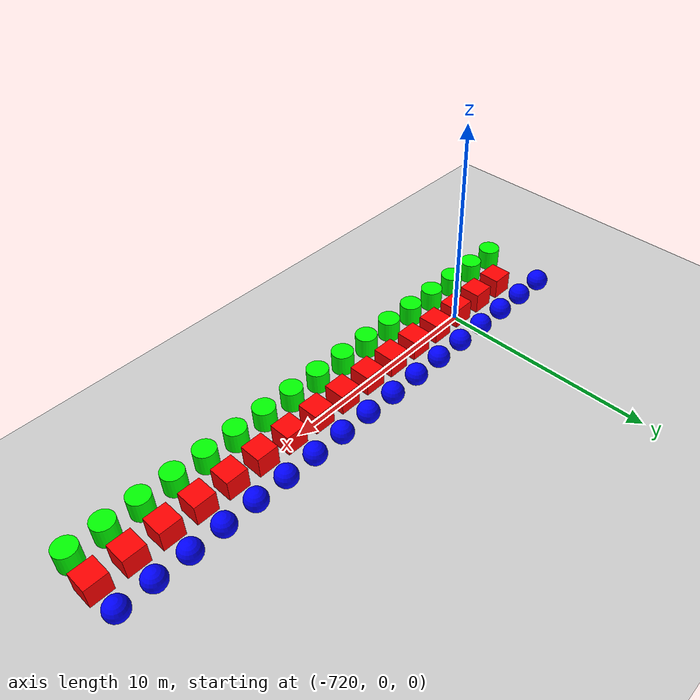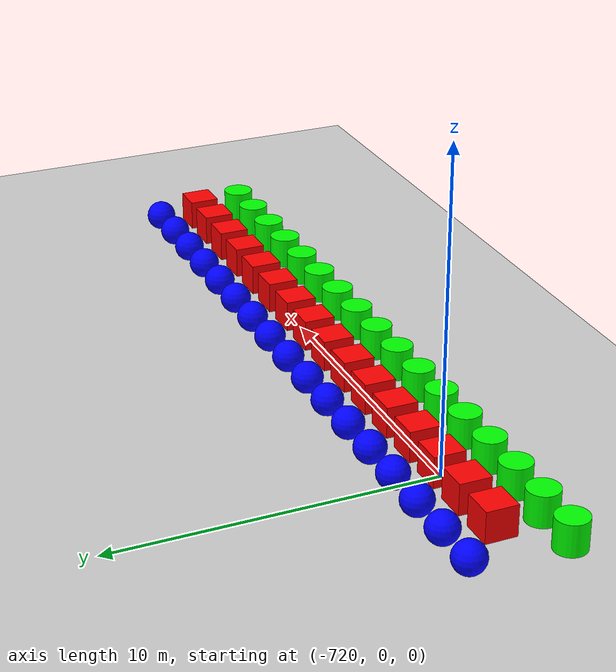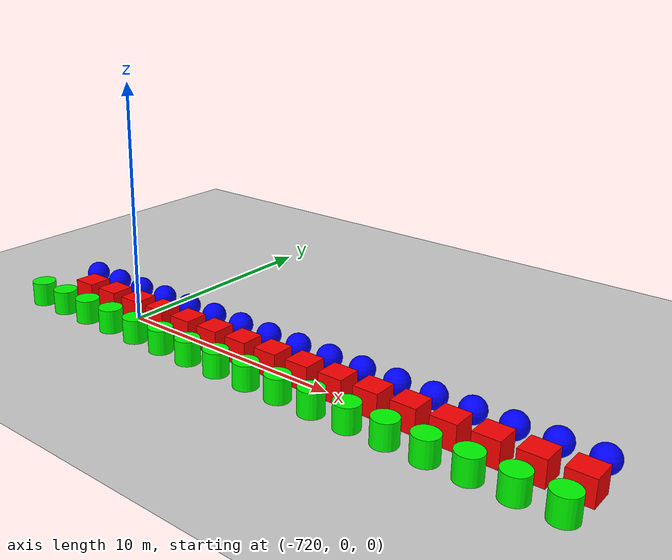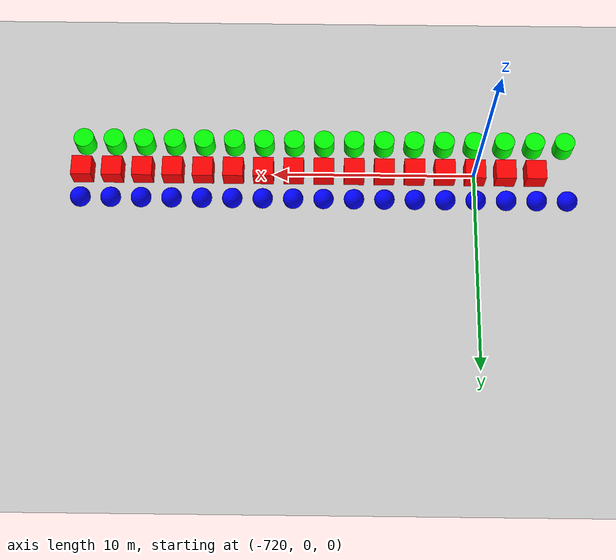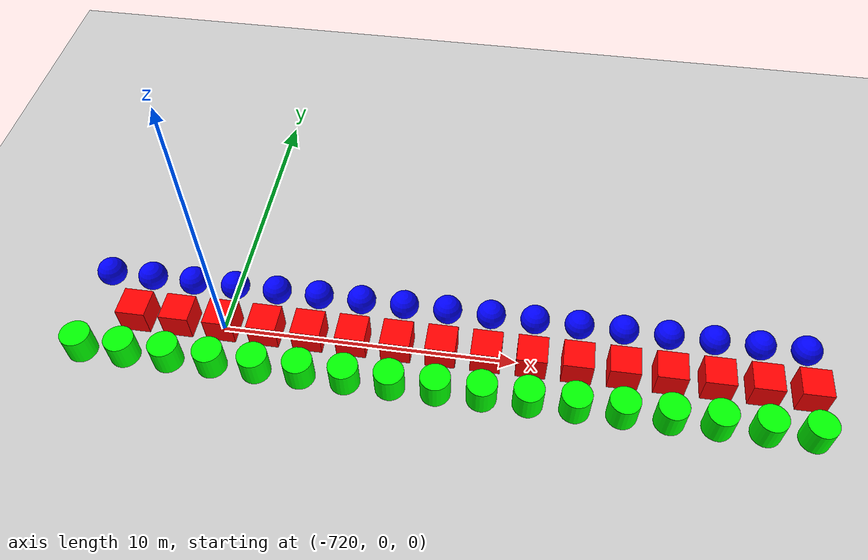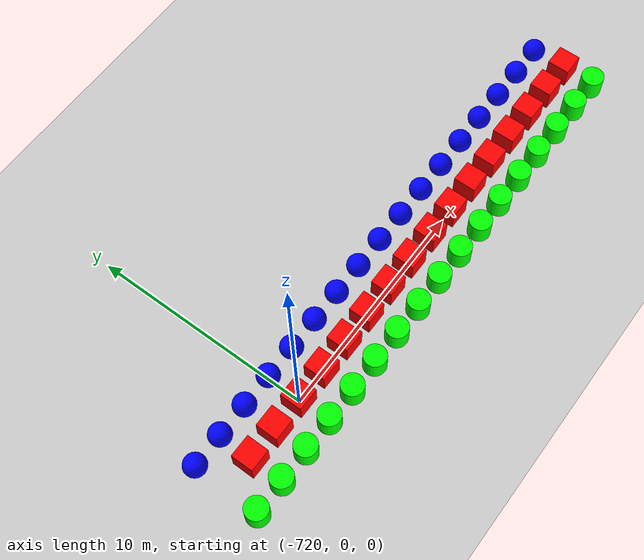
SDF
<sdf version="1.6">
 <world name="shapes">
  <model name="ground_plane">
   <static>true</static>
   <link name="link">
    <collision name="collision">
     <geometry><plane><normal>0 0 1</normal><size>100 100</size></plane></geometry>
    </collision>
    <visual name="visual">
     <geometry><plane><normal>0 0 1</normal><size>100 100</size></plane></geometry>
     <material>
      <ambient>0.8 0.8 0.8 1</ambient>
      <diffuse>0.8 0.8 0.8 1</diffuse>
      <specular>0.8 0.8 0.8 1</specular>
     </material>
    </visual>
   </link>
  </model>
  <model name="cylinder_17">
   <pose>-724.5 -1.5 0.5 0 0 0</pose>
   <link name="cylinder_link">
    <inertial>
     <inertia><ixx>2</ixx><ixy>0</ixy><ixz>0</ixz><iyy>2</iyy><iyz>0</iyz><izz>2</izz></inertia>
     <mass>2.0</mass>
    </inertial>
    <collision name="cylinder_collision">
     <geometry><cylinder><radius>0.5</radius><length>1.0</length></cylinder></geometry>
    </collision>
    <visual name="cylinder_visual">
     <geometry><cylinder><radius>0.5</radius><length>1.0</length></cylinder></geometry>
     <material><ambient>0 1 0 1</ambient><diffuse>0 1 0 1</diffuse><specular>0 1 0 1</specular></material>
    </visual>
   </link>
  </model>
  <model name="sphere_17">
   <pose>-724.5 1.5 0.5 0 0 0</pose>
   <link name="sphere_link">
    <inertial>
     <inertia><ixx>3</ixx><ixy>0</ixy><ixz>0</ixz><iyy>3</iyy><iyz>0</iyz><izz>3</izz></inertia>
     <mass>3.0</mass>
    </inertial>
    <collision name="sphere_collision"><geometry><sphere><radius>0.5</radius></sphere></geometry></collision>
    <visual name="sphere_visual">
     <geometry><sphere><radius>0.5</radius></sphere></geometry>
     <material><ambient>0 0 1 1</ambient><diffuse>0 0 1 1</diffuse><specular>0 0 1 1</specular></material>
    </visual>
   </link>
  </model>
  <model name="box_18">
   <pose>-723.0 0 0.5 0 0 0</pose>
   <link name="box_link">
    <inertial>
     <inertia><ixx>1</ixx><ixy>0</ixy><ixz>0</ixz><iyy>1</iyy><iyz>0</iyz><izz>1</izz></inertia>
     <mass>1.0</mass>
    </inertial>
    <collision name="box_collision"><geometry><box><size>1 1 1</size></box></geometry></collision>
    <visual name="box_visual">
     <geometry><box><size>1 1 1</size></box></geometry>
     <material><ambient>1 0 0 1</ambient><diffuse>1 0 0 1</diffuse><specular>1 0 0 1</specular></material>
    </visual>
   </link>
  </model>
  <model name="cylinder_18">
   <pose>-723.0 -1.5 0.5 0 0 0</pose>
   <link name="cylinder_link">
    <inertial>
     <inertia><ixx>2</ixx><ixy>0</ixy><ixz>0</ixz><iyy>2</iyy><iyz>0</iyz><izz>2</izz></inertia>
     <mass>2.0</mass>
    </inertial>
    <collision name="cylinder_collision">
     <geometry><cylinder><radius>0.5</radius><length>1.0</length></cylinder></geometry>
    </collision>
    <visual name="cylinder_visual">
     <geometry><cylinder><radius>0.5</radius><length>1.0</length></cylinder></geometry>
     <material><ambient>0 1 0 1</ambient><diffuse>0 1 0 1</diffuse><specular>0 1 0 1</specular></material>
    </visual>
   </link>
  </model>
  <model name="sphere_18">
   <pose>-723.0 1.5 0.5 0 0 0</pose>
   <link name="sphere_link">
    <inertial>
     <inertia><ixx>3</ixx><ixy>0</ixy><ixz>0</ixz><iyy>3</iyy><iyz>0</iyz><izz>3</izz></inertia>
     <mass>3.0</mass>
    </inertial>
    <collision name="sphere_collision"><geometry><sphere><radius>0.5</radius></sphere></geometry></collision>
    <visual name="sphere_visual">
     <geometry><sphere><radius>0.5</radius></sphere></geometry>
     <material><ambient>0 0 1 1</ambient><diffuse>0 0 1 1</diffuse><specular>0 0 1 1</specular></material>
    </visual>
   </link>
  </model>
  <model name="box_19">
   <pose>-721.5 0 0.5 0 0 0</pose>
   <link name="box_link">
    <inertial>
     <inertia><ixx>1</ixx><ixy>0</ixy><ixz>0</ixz><iyy>1</iyy><iyz>0</iyz><izz>1</izz></inertia>
     <mass>1.0</mass>
    </inertial>
    <collision name="box_collision"><geometry><box><size>1 1 1</size></box></geometry></collision>
    <visual name="box_visual">
     <geometry><box><size>1 1 1</size></box></geometry>
     <material><ambient>1 0 0 1</ambient><diffuse>1 0 0 1</diffuse><specular>1 0 0 1</specular></material>
    </visual>
   </link>
  </model>
  <model name="cylinder_19">
   <pose>-721.5 -1.5 0.5 0 0 0</pose>
   <link name="cylinder_link">
    <inertial>
     <inertia><ixx>2</ixx><ixy>0</ixy><ixz>0</ixz><iyy>2</iyy><iyz>0</iyz><izz>2</izz></inertia>
     <mass>2.0</mass>
    </inertial>
    <collision name="cylinder_collision">
     <geometry><cylinder><radius>0.5</radius><length>1.0</length></cylinder></geometry>
    </collision>
    <visual name="cylinder_visual">
     <geometry><cylinder><radius>0.5</radius><length>1.0</length></cylinder></geometry>
     <material><ambient>0 1 0 1</ambient><diffuse>0 1 0 1</diffuse><specular>0 1 0 1</specular></material>
    </visual>
   </link>
  </model>
  <model name="sphere_19">
   <pose>-721.5 1.5 0.5 0 0 0</pose>
   <link name="sphere_link">
    <inertial>
     <inertia><ixx>3</ixx><ixy>0</ixy><ixz>0</ixz><iyy>3</iyy><iyz>0</iyz><izz>3</izz></inertia>
     <mass>3.0</mass>
    </inertial>
    <collision name="sphere_collision"><geometry><sphere><radius>0.5</radius></sphere></geometry></collision>
    <visual name="sphere_visual">
     <geometry><sphere><radius>0.5</radius></sphere></geometry>
     <material><ambient>0 0 1 1</ambient><diffuse>0 0 1 1</diffuse><specular>0 0 1 1</specular></material>
    </visual>
   </link>
  </model>
  <model name="box_20">
   <pose>-720.0 0 0.5 0 0 0</pose>
   <link name="box_link">
    <inertial>
     <inertia><ixx>1</ixx><ixy>0</ixy><ixz>0</ixz><iyy>1</iyy><iyz>0</iyz><izz>1</izz></inertia>
     <mass>1.0</mass>
    </inertial>
    <collision name="box_collision"><geometry><box><size>1 1 1</size></box></geometry></collision>
    <visual name="box_visual">
     <geometry><box><size>1 1 1</size></box></geometry>
     <material><ambient>1 0 0 1</ambient><diffuse>1 0 0 1</diffuse><specular>1 0 0 1</specular></material>
    </visual>
   </link>
  </model>
  <model name="cylinder_20">
   <pose>-720.0 -1.5 0.5 0 0 0</pose>
   <link name="cylinder_link">
    <inertial>
     <inertia><ixx>2</ixx><ixy>0</ixy><ixz>0</ixz><iyy>2</iyy><iyz>0</iyz><izz>2</izz></inertia>
     <mass>2.0</mass>
    </inertial>
    <collision name="cylinder_collision">
     <geometry><cylinder><radius>0.5</radius><length>1.0</length></cylinder></geometry>
    </collision>
    <visual name="cylinder_visual">
     <geometry><cylinder><radius>0.5</radius><length>1.0</length></cylinder></geometry>
     <material><ambient>0 1 0 1</ambient><diffuse>0 1 0 1</diffuse><specular>0 1 0 1</specular></material>
    </visual>
   </link>
  </model>
  <model name="sphere_20">
   <pose>-720.0 1.5 0.5 0 0 0</pose>
   <link name="sphere_link">
    <inertial>
     <inertia><ixx>3</ixx><ixy>0</ixy><ixz>0</ixz><iyy>3</iyy><iyz>0</iyz><izz>3</izz></inertia>
     <mass>3.0</mass>
    </inertial>
    <collision name="sphere_collision"><geometry><sphere><radius>0.5</radius></sphere></geometry></collision>
    <visual name="sphere_visual">
     <geometry><sphere><radius>0.5</radius></sphere></geometry>
     <material><ambient>0 0 1 1</ambient><diffuse>0 0 1 1</diffuse><specular>0 0 1 1</specular></material>
    </visual>
   </link>
  </model>
  <model name="box_21">
   <pose>-718.5 0 0.5 0 0 0</pose>
   <link name="box_link">
    <inertial>
     <inertia><ixx>1</ixx><ixy>0</ixy><ixz>0</ixz><iyy>1</iyy><iyz>0</iyz><izz>1</izz></inertia>
     <mass>1.0</mass>
    </inertial>
    <collision name="box_collision"><geometry><box><size>1 1 1</size></box></geometry></collision>
    <visual name="box_visual">
     <geometry><box><size>1 1 1</size></box></geometry>
     <material><ambient>1 0 0 1</ambient><diffuse>1 0 0 1</diffuse><specular>1 0 0 1</specular></material>
    </visual>
   </link>
  </model>
  <model name="cylinder_21">
   <pose>-718.5 -1.5 0.5 0 0 0</pose>
   <link name="cylinder_link">
    <inertial>
     <inertia><ixx>2</ixx><ixy>0</ixy><ixz>0</ixz><iyy>2</iyy><iyz>0</iyz><izz>2</izz></inertia>
     <mass>2.0</mass>
    </inertial>
    <collision name="cylinder_collision">
     <geometry><cylinder><radius>0.5</radius><length>1.0</length></cylinder></geometry>
    </collision>
    <visual name="cylinder_visual">
     <geometry><cylinder><radius>0.5</radius><length>1.0</length></cylinder></geometry>
     <material><ambient>0 1 0 1</ambient><diffuse>0 1 0 1</diffuse><specular>0 1 0 1</specular></material>
    </visual>
   </link>
  </model>
  <model name="sphere_21">
   <pose>-718.5 1.5 0.5 0 0 0</pose>
   <link name="sphere_link">
    <inertial>
     <inertia><ixx>3</ixx><ixy>0</ixy><ixz>0</ixz><iyy>3</iyy><iyz>0</iyz><izz>3</izz></inertia>
     <mass>3.0</mass>
    </inertial>
    <collision name="sphere_collision"><geometry><sphere><radius>0.5</radius></sphere></geometry></collision>
    <visual name="sphere_visual">
     <geometry><sphere><radius>0.5</radius></sphere></geometry>
     <material><ambient>0 0 1 1</ambient><diffuse>0 0 1 1</diffuse><specular>0 0 1 1</specular></material>
    </visual>
   </link>
  </model>
  <model name="box_22">
   <pose>-717.0 0 0.5 0 0 0</pose>
   <link name="box_link">
    <inertial>
     <inertia><ixx>1</ixx><ixy>0</ixy><ixz>0</ixz><iyy>1</iyy><iyz>0</iyz><izz>1</izz></inertia>
     <mass>1.0</mass>
    </inertial>
    <collision name="box_collision"><geometry><box><size>1 1 1</size></box></geometry></collision>
    <visual name="box_visual">
     <geometry><box><size>1 1 1</size></box></geometry>
     <material><ambient>1 0 0 1</ambient><diffuse>1 0 0 1</diffuse><specular>1 0 0 1</specular></material>
    </visual>
   </link>
  </model>
  <model name="cylinder_22">
   <pose>-717.0 -1.5 0.5 0 0 0</pose>
   <link name="cylinder_link">
    <inertial>
     <inertia><ixx>2</ixx><ixy>0</ixy><ixz>0</ixz><iyy>2</iyy><iyz>0</iyz><izz>2</izz></inertia>
     <mass>2.0</mass>
    </inertial>
    <collision name="cylinder_collision">
     <geometry><cylinder><radius>0.5</radius><length>1.0</length></cylinder></geometry>
    </collision>
    <visual name="cylinder_visual">
     <geometry><cylinder><radius>0.5</radius><length>1.0</length></cylinder></geometry>
     <material><ambient>0 1 0 1</ambient><diffuse>0 1 0 1</diffuse><specular>0 1 0 1</specular></material>
    </visual>
   </link>
  </model>
  <model name="sphere_22">
   <pose>-717.0 1.5 0.5 0 0 0</pose>
   <link name="sphere_link">
    <inertial>
     <inertia><ixx>3</ixx><ixy>0</ixy><ixz>0</ixz><iyy>3</iyy><iyz>0</iyz><izz>3</izz></inertia>
     <mass>3.0</mass>
    </inertial>
    <collision name="sphere_collision"><geometry><sphere><radius>0.5</radius></sphere></geometry></collision>
    <visual name="sphere_visual">
     <geometry><sphere><radius>0.5</radius></sphere></geometry>
     <material><ambient>0 0 1 1</ambient><diffuse>0 0 1 1</diffuse><specular>0 0 1 1</specular></material>
    </visual>
   </link>
  </model>
  <model name="box_23">
   <pose>-715.5 0 0.5 0 0 0</pose>
   <link name="box_link">
    <inertial>
     <inertia><ixx>1</ixx><ixy>0</ixy><ixz>0</ixz><iyy>1</iyy><iyz>0</iyz><izz>1</izz></inertia>
     <mass>1.0</mass>
    </inertial>
    <collision name="box_collision"><geometry><box><size>1 1 1</size></box></geometry></collision>
    <visual name="box_visual">
     <geometry><box><size>1 1 1</size></box></geometry>
     <material><ambient>1 0 0 1</ambient><diffuse>1 0 0 1</diffuse><specular>1 0 0 1</specular></material>
    </visual>
   </link>
  </model>
  <model name="cylinder_23">
   <pose>-715.5 -1.5 0.5 0 0 0</pose>
   <link name="cylinder_link">
    <inertial>
     <inertia><ixx>2</ixx><ixy>0</ixy><ixz>0</ixz><iyy>2</iyy><iyz>0</iyz><izz>2</izz></inertia>
     <mass>2.0</mass>
    </inertial>
    <collision name="cylinder_collision">
     <geometry><cylinder><radius>0.5</radius><length>1.0</length></cylinder></geometry>
    </collision>
    <visual name="cylinder_visual">
     <geometry><cylinder><radius>0.5</radius><length>1.0</length></cylinder></geometry>
     <material><ambient>0 1 0 1</ambient><diffuse>0 1 0 1</diffuse><specular>0 1 0 1</specular></material>
    </visual>
   </link>
  </model>
  <model name="sphere_23">
   <pose>-715.5 1.5 0.5 0 0 0</pose>
   <link name="sphere_link">
    <inertial>
     <inertia><ixx>3</ixx><ixy>0</ixy><ixz>0</ixz><iyy>3</iyy><iyz>0</iyz><izz>3</izz></inertia>
     <mass>3.0</mass>
    </inertial>
    <collision name="sphere_collision"><geometry><sphere><radius>0.5</radius></sphere></geometry></collision>
    <visual name="sphere_visual">
     <geometry><sphere><radius>0.5</radius></sphere></geometry>
     <material><ambient>0 0 1 1</ambient><diffuse>0 0 1 1</diffuse><specular>0 0 1 1</specular></material>
    </visual>
   </link>
  </model>
  <model name="box_24">
   <pose>-714.0 0 0.5 0 0 0</pose>
   <link name="box_link">
    <inertial>
     <inertia><ixx>1</ixx><ixy>0</ixy><ixz>0</ixz><iyy>1</iyy><iyz>0</iyz><izz>1</izz></inertia>
     <mass>1.0</mass>
    </inertial>
    <collision name="box_collision"><geometry><box><size>1 1 1</size></box></geometry></collision>
    <visual name="box_visual">
     <geometry><box><size>1 1 1</size></box></geometry>
     <material><ambient>1 0 0 1</ambient><diffuse>1 0 0 1</diffuse><specular>1 0 0 1</specular></material>
    </visual>
   </link>
  </model>
  <model name="cylinder_24">
   <pose>-714.0 -1.5 0.5 0 0 0</pose>
   <link name="cylinder_link">
    <inertial>
     <inertia><ixx>2</ixx><ixy>0</ixy><ixz>0</ixz><iyy>2</iyy><iyz>0</iyz><izz>2</izz></inertia>
     <mass>2.0</mass>
    </inertial>
    <collision name="cylinder_collision">
     <geometry><cylinder><radius>0.5</radius><length>1.0</length></cylinder></geometry>
    </collision>
    <visual name="cylinder_visual">
     <geometry><cylinder><radius>0.5</radius><length>1.0</length></cylinder></geometry>
     <material><ambient>0 1 0 1</ambient><diffuse>0 1 0 1</diffuse><specular>0 1 0 1</specular></material>
    </visual>
   </link>
  </model>
  <model name="sphere_24">
   <pose>-714.0 1.5 0.5 0 0 0</pose>
   <link name="sphere_link">
    <inertial>
     <inertia><ixx>3</ixx><ixy>0</ixy><ixz>0</ixz><iyy>3</iyy><iyz>0</iyz><izz>3</izz></inertia>
     <mass>3.0</mass>
    </inertial>
    <collision name="sphere_collision"><geometry><sphere><radius>0.5</radius></sphere></geometry></collision>
    <visual name="sphere_visual">
     <geometry><sphere><radius>0.5</radius></sphere></geometry>
     <material><ambient>0 0 1 1</ambient><diffuse>0 0 1 1</diffuse><specular>0 0 1 1</specular></material>
    </visual>
   </link>
  </model>
  <model name="box_25">
   <pose>-712.5 0 0.5 0 0 0</pose>
   <link name="box_link">
    <inertial>
     <inertia><ixx>1</ixx><ixy>0</ixy><ixz>0</ixz><iyy>1</iyy><iyz>0</iyz><izz>1</izz></inertia>
     <mass>1.0</mass>
    </inertial>
    <collision name="box_collision"><geometry><box><size>1 1 1</size></box></geometry></collision>
    <visual name="box_visual">
     <geometry><box><size>1 1 1</size></box></geometry>
     <material><ambient>1 0 0 1</ambient><diffuse>1 0 0 1</diffuse><specular>1 0 0 1</specular></material>
    </visual>
   </link>
  </model>
  <model name="cylinder_25">
   <pose>-712.5 -1.5 0.5 0 0 0</pose>
   <link name="cylinder_link">
    <inertial>
     <inertia><ixx>2</ixx><ixy>0</ixy><ixz>0</ixz><iyy>2</iyy><iyz>0</iyz><izz>2</izz></inertia>
     <mass>2.0</mass>
    </inertial>
    <collision name="cylinder_collision">
     <geometry><cylinder><radius>0.5</radius><length>1.0</length></cylinder></geometry>
    </collision>
    <visual name="cylinder_visual">
     <geometry><cylinder><radius>0.5</radius><length>1.0</length></cylinder></geometry>
     <material><ambient>0 1 0 1</ambient><diffuse>0 1 0 1</diffuse><specular>0 1 0 1</specular></material>
    </visual>
   </link>
  </model>
  <model name="sphere_25">
   <pose>-712.5 1.5 0.5 0 0 0</pose>
   <link name="sphere_link">
    <inertial>
     <inertia><ixx>3</ixx><ixy>0</ixy><ixz>0</ixz><iyy>3</iyy><iyz>0</iyz><izz>3</izz></inertia>
     <mass>3.0</mass>
    </inertial>
    <collision name="sphere_collision"><geometry><sphere><radius>0.5</radius></sphere></geometry></collision>
    <visual name="sphere_visual">
     <geometry><sphere><radius>0.5</radius></sphere></geometry>
     <material><ambient>0 0 1 1</ambient><diffuse>0 0 1 1</diffuse><specular>0 0 1 1</specular></material>
    </visual>
   </link>
  </model>
  <model name="box_26">
   <pose>-711.0 0 0.5 0 0 0</pose>
   <link name="box_link">
    <inertial>
     <inertia><ixx>1</ixx><ixy>0</ixy><ixz>0</ixz><iyy>1</iyy><iyz>0</iyz><izz>1</izz></inertia>
     <mass>1.0</mass>
    </inertial>
    <collision name="box_collision"><geometry><box><size>1 1 1</size></box></geometry></collision>
    <visual name="box_visual">
     <geometry><box><size>1 1 1</size></box></geometry>
     <material><ambient>1 0 0 1</ambient><diffuse>1 0 0 1</diffuse><specular>1 0 0 1</specular></material>
    </visual>
   </link>
  </model>
  <model name="cylinder_26">
   <pose>-711.0 -1.5 0.5 0 0 0</pose>
   <link name="cylinder_link">
    <inertial>
     <inertia><ixx>2</ixx><ixy>0</ixy><ixz>0</ixz><iyy>2</iyy><iyz>0</iyz><izz>2</izz></inertia>
     <mass>2.0</mass>
    </inertial>
    <collision name="cylinder_collision">
     <geometry><cylinder><radius>0.5</radius><length>1.0</length></cylinder></geometry>
    </collision>
    <visual name="cylinder_visual">
     <geometry><cylinder><radius>0.5</radius><length>1.0</length></cylinder></geometry>
     <material><ambient>0 1 0 1</ambient><diffuse>0 1 0 1</diffuse><specular>0 1 0 1</specular></material>
    </visual>
   </link>
  </model>
  <model name="sphere_26">
   <pose>-711.0 1.5 0.5 0 0 0</pose>
   <link name="sphere_link">
    <inertial>
     <inertia><ixx>3</ixx><ixy>0</ixy><ixz>0</ixz><iyy>3</iyy><iyz>0</iyz><izz>3</izz></inertia>
     <mass>3.0</mass>
    </inertial>
    <collision name="sphere_collision"><geometry><sphere><radius>0.5</radius></sphere></geometry></collision>
    <visual name="sphere_visual">
     <geometry><sphere><radius>0.5</radius></sphere></geometry>
     <material><ambient>0 0 1 1</ambient><diffuse>0 0 1 1</diffuse><specular>0 0 1 1</specular></material>
    </visual>
   </link>
  </model>
  <model name="box_27">
   <pose>-709.5 0 0.5 0 0 0</pose>
   <link name="box_link">
    <inertial>
     <inertia><ixx>1</ixx><ixy>0</ixy><ixz>0</ixz><iyy>1</iyy><iyz>0</iyz><izz>1</izz></inertia>
     <mass>1.0</mass>
    </inertial>
    <collision name="box_collision"><geometry><box><size>1 1 1</size></box></geometry></collision>
    <visual name="box_visual">
     <geometry><box><size>1 1 1</size></box></geometry>
     <material><ambient>1 0 0 1</ambient><diffuse>1 0 0 1</diffuse><specular>1 0 0 1</specular></material>
    </visual>
   </link>
  </model>
  <model name="cylinder_27">
   <pose>-709.5 -1.5 0.5 0 0 0</pose>
   <link name="cylinder_link">
    <inertial>
     <inertia><ixx>2</ixx><ixy>0</ixy><ixz>0</ixz><iyy>2</iyy><iyz>0</iyz><izz>2</izz></inertia>
     <mass>2.0</mass>
    </inertial>
    <collision name="cylinder_collision">
     <geometry><cylinder><radius>0.5</radius><length>1.0</length></cylinder></geometry>
    </collision>
    <visual name="cylinder_visual">
     <geometry><cylinder><radius>0.5</radius><length>1.0</length></cylinder></geometry>
     <material><ambient>0 1 0 1</ambient><diffuse>0 1 0 1</diffuse><specular>0 1 0 1</specular></material>
    </visual>
   </link>
  </model>
  <model name="sphere_27">
   <pose>-709.5 1.5 0.5 0 0 0</pose>
   <link name="sphere_link">
    <inertial>
     <inertia><ixx>3</ixx><ixy>0</ixy><ixz>0</ixz><iyy>3</iyy><iyz>0</iyz><izz>3</izz></inertia>
     <mass>3.0</mass>
    </inertial>
    <collision name="sphere_collision"><geometry><sphere><radius>0.5</radius></sphere></geometry></collision>
    <visual name="sphere_visual">
     <geometry><sphere><radius>0.5</radius></sphere></geometry>
     <material><ambient>0 0 1 1</ambient><diffuse>0 0 1 1</diffuse><specular>0 0 1 1</specular></material>
    </visual>
   </link>
  </model>
  <model name="box_28">
   <pose>-708.0 0 0.5 0 0 0</pose>
   <link name="box_link">
    <inertial>
     <inertia><ixx>1</ixx><ixy>0</ixy><ixz>0</ixz><iyy>1</iyy><iyz>0</iyz><izz>1</izz></inertia>
     <mass>1.0</mass>
    </inertial>
    <collision name="box_collision"><geometry><box><size>1 1 1</size></box></geometry></collision>
    <visual name="box_visual">
     <geometry><box><size>1 1 1</size></box></geometry>
     <material><ambient>1 0 0 1</ambient><diffuse>1 0 0 1</diffuse><specular>1 0 0 1</specular></material>
    </visual>
   </link>
  </model>
  <model name="cylinder_28">
   <pose>-708.0 -1.5 0.5 0 0 0</pose>
   <link name="cylinder_link">
    <inertial>
     <inertia><ixx>2</ixx><ixy>0</ixy><ixz>0</ixz><iyy>2</iyy><iyz>0</iyz><izz>2</izz></inertia>
     <mass>2.0</mass>
    </inertial>
    <collision name="cylinder_collision">
     <geometry><cylinder><radius>0.5</radius><length>1.0</length></cylinder></geometry>
    </collision>
    <visual name="cylinder_visual">
     <geometry><cylinder><radius>0.5</radius><length>1.0</length></cylinder></geometry>
     <material><ambient>0 1 0 1</ambient><diffuse>0 1 0 1</diffuse><specular>0 1 0 1</specular></material>
    </visual>
   </link>
  </model>
  <model name="sphere_28">
   <pose>-708.0 1.5 0.5 0 0 0</pose>
   <link name="sphere_link">
    <inertial>
     <inertia><ixx>3</ixx><ixy>0</ixy><ixz>0</ixz><iyy>3</iyy><iyz>0</iyz><izz>3</izz></inertia>
     <mass>3.0</mass>
    </inertial>
    <collision name="sphere_collision"><geometry><sphere><radius>0.5</radius></sphere></geometry></collision>
    <visual name="sphere_visual">
     <geometry><sphere><radius>0.5</radius></sphere></geometry>
     <material><ambient>0 0 1 1</ambient><diffuse>0 0 1 1</diffuse><specular>0 0 1 1</specular></material>
    </visual>
   </link>
  </model>
  <model name="box_29">
   <pose>-706.5 0 0.5 0 0 0</pose>
   <link name="box_link">
    <inertial>
     <inertia><ixx>1</ixx><ixy>0</ixy><ixz>0</ixz><iyy>1</iyy><iyz>0</iyz><izz>1</izz></inertia>
     <mass>1.0</mass>
    </inertial>
    <collision name="box_collision"><geometry><box><size>1 1 1</size></box></geometry></collision>
    <visual name="box_visual">
     <geometry><box><size>1 1 1</size></box></geometry>
     <material><ambient>1 0 0 1</ambient><diffuse>1 0 0 1</diffuse><specular>1 0 0 1</specular></material>
    </visual>
   </link>
  </model>
  <model name="cylinder_29">
   <pose>-706.5 -1.5 0.5 0 0 0</pose>
   <link name="cylinder_link">
    <inertial>
     <inertia><ixx>2</ixx><ixy>0</ixy><ixz>0</ixz><iyy>2</iyy><iyz>0</iyz><izz>2</izz></inertia>
     <mass>2.0</mass>
    </inertial>
    <collision name="cylinder_collision">
     <geometry><cylinder><radius>0.5</radius><length>1.0</length></cylinder></geometry>
    </collision>
    <visual name="cylinder_visual">
     <geometry><cylinder><radius>0.5</radius><length>1.0</length></cylinder></geometry>
     <material><ambient>0 1 0 1</ambient><diffuse>0 1 0 1</diffuse><specular>0 1 0 1</specular></material>
    </visual>
   </link>
  </model>
  <model name="sphere_29">
   <pose>-706.5 1.5 0.5 0 0 0</pose>
   <link name="sphere_link">
    <inertial>
     <inertia><ixx>3</ixx><ixy>0</ixy><ixz>0</ixz><iyy>3</iyy><iyz>0</iyz><izz>3</izz></inertia>
     <mass>3.0</mass>
    </inertial>
    <collision name="sphere_collision"><geometry><sphere><radius>0.5</radius></sphere></geometry></collision>
    <visual name="sphere_visual">
     <geometry><sphere><radius>0.5</radius></sphere></geometry>
     <material><ambient>0 0 1 1</ambient><diffuse>0 0 1 1</diffuse><specular>0 0 1 1</specular></material>
    </visual>
   </link>
  </model>
  <model name="box_30">
   <pose>-705.0 0 0.5 0 0 0</pose>
   <link name="box_link">
    <inertial>
     <inertia><ixx>1</ixx><ixy>0</ixy><ixz>0</ixz><iyy>1</iyy><iyz>0</iyz><izz>1</izz></inertia>
     <mass>1.0</mass>
    </inertial>
    <collision name="box_collision"><geometry><box><size>1 1 1</size></box></geometry></collision>
    <visual name="box_visual">
     <geometry><box><size>1 1 1</size></box></geometry>
     <material><ambient>1 0 0 1</ambient><diffuse>1 0 0 1</diffuse><specular>1 0 0 1</specular></material>
    </visual>
   </link>
  </model>
  <model name="cylinder_30">
   <pose>-705.0 -1.5 0.5 0 0 0</pose>
   <link name="cylinder_link">
    <inertial>
     <inertia><ixx>2</ixx><ixy>0</ixy><ixz>0</ixz><iyy>2</iyy><iyz>0</iyz><izz>2</izz></inertia>
     <mass>2.0</mass>
    </inertial>
    <collision name="cylinder_collision">
     <geometry><cylinder><radius>0.5</radius><length>1.0</length></cylinder></geometry>
    </collision>
    <visual name="cylinder_visual">
     <geometry><cylinder><radius>0.5</radius><length>1.0</length></cylinder></geometry>
     <material><ambient>0 1 0 1</ambient><diffuse>0 1 0 1</diffuse><specular>0 1 0 1</specular></material>
    </visual>
   </link>
  </model>
  <model name="sphere_30">
   <pose>-705.0 1.5 0.5 0 0 0</pose>
   <link name="sphere_link">
    <inertial>
     <inertia><ixx>3</ixx><ixy>0</ixy><ixz>0</ixz><iyy>3</iyy><iyz>0</iyz><izz>3</izz></inertia>
     <mass>3.0</mass>
    </inertial>
    <collision name="sphere_collision"><geometry><sphere><radius>0.5</radius></sphere></geometry></collision>
    <visual name="sphere_visual">
     <geometry><sphere><radius>0.5</radius></sphere></geometry>
     <material><ambient>0 0 1 1</ambient><diffuse>0 0 1 1</diffuse><specular>0 0 1 1</specular></material>
    </visual>
   </link>
  </model>
  <model name="box_31">
   <pose>-703.5 0 0.5 0 0 0</pose>
   <link name="box_link">
    <inertial>
     <inertia><ixx>1</ixx><ixy>0</ixy><ixz>0</ixz><iyy>1</iyy><iyz>0</iyz><izz>1</izz></inertia>
     <mass>1.0</mass>
    </inertial>
    <collision name="box_collision"><geometry><box><size>1 1 1</size></box></geometry></collision>
    <visual name="box_visual">
     <geometry><box><size>1 1 1</size></box></geometry>
     <material><ambient>1 0 0 1</ambient><diffuse>1 0 0 1</diffuse><specular>1 0 0 1</specular></material>
    </visual>
   </link>
  </model>
  <model name="cylinder_31">
   <pose>-703.5 -1.5 0.5 0 0 0</pose>
   <link name="cylinder_link">
    <inertial>
     <inertia><ixx>2</ixx><ixy>0</ixy><ixz>0</ixz><iyy>2</iyy><iyz>0</iyz><izz>2</izz></inertia>
     <mass>2.0</mass>
    </inertial>
    <collision name="cylinder_collision">
     <geometry><cylinder><radius>0.5</radius><length>1.0</length></cylinder></geometry>
    </collision>
    <visual name="cylinder_visual">
     <geometry><cylinder><radius>0.5</radius><length>1.0</length></cylinder></geometry>
     <material><ambient>0 1 0 1</ambient><diffuse>0 1 0 1</diffuse><specular>0 1 0 1</specular></material>
    </visual>
   </link>
  </model>
  <model name="sphere_31">
   <pose>-703.5 1.5 0.5 0 0 0</pose>
   <link name="sphere_link">
    <inertial>
     <inertia><ixx>3</ixx><ixy>0</ixy><ixz>0</ixz><iyy>3</iyy><iyz>0</iyz><izz>3</izz></inertia>
     <mass>3.0</mass>
    </inertial>
    <collision name="sphere_collision"><geometry><sphere><radius>0.5</radius></sphere></geometry></collision>
    <visual name="sphere_visual">
     <geometry><sphere><radius>0.5</radius></sphere></geometry>
     <material><ambient>0 0 1 1</ambient><diffuse>0 0 1 1</diffuse><specular>0 0 1 1</specular></material>
    </visual>
   </link>
  </model>
  <model name="box_32">
   <pose>-702.0 0 0.5 0 0 0</pose>
   <link name="box_link">
    <inertial>
     <inertia><ixx>1</ixx><ixy>0</ixy><ixz>0</ixz><iyy>1</iyy><iyz>0</iyz><izz>1</izz></inertia>
     <mass>1.0</mass>
    </inertial>
    <collision name="box_collision"><geometry><box><size>1 1 1</size></box></geometry></collision>
    <visual name="box_visual">
     <geometry><box><size>1 1 1</size></box></geometry>
     <material><ambient>1 0 0 1</ambient><diffuse>1 0 0 1</diffuse><specular>1 0 0 1</specular></material>
    </visual>
   </link>
  </model>
  <model name="cylinder_32">
   <pose>-702.0 -1.5 0.5 0 0 0</pose>
   <link name="cylinder_link">
    <inertial>
     <inertia><ixx>2</ixx><ixy>0</ixy><ixz>0</ixz><iyy>2</iyy><iyz>0</iyz><izz>2</izz></inertia>
     <mass>2.0</mass>
    </inertial>
    <collision name="cylinder_collision">
     <geometry><cylinder><radius>0.5</radius><length>1.0</length></cylinder></geometry>
    </collision>
    <visual name="cylinder_visual">
     <geometry><cylinder><radius>0.5</radius><length>1.0</length></cylinder></geometry>
     <material><ambient>0 1 0 1</ambient><diffuse>0 1 0 1</diffuse><specular>0 1 0 1</specular></material>
    </visual>
   </link>
  </model>
  <model name="sphere_32">
   <pose>-702.0 1.5 0.5 0 0 0</pose>
   <link name="sphere_link">
    <inertial>
     <inertia><ixx>3</ixx><ixy>0</ixy><ixz>0</ixz><iyy>3</iyy><iyz>0</iyz><izz>3</izz></inertia>
     <mass>3.0</mass>
    </inertial>
    <collision name="sphere_collision"><geometry><sphere><radius>0.5</radius></sphere></geometry></collision>
    <visual name="sphere_visual">
     <geometry><sphere><radius>0.5</radius></sphere></geometry>
     <material><ambient>0 0 1 1</ambient><diffuse>0 0 1 1</diffuse><specular>0 0 1 1</specular></material>
    </visual>
   </link>
  </model>
  <model name="box_33">
   <pose>-700.5 0 0.5 0 0 0</pose>
   <link name="box_link">
    <inertial>
     <inertia><ixx>1</ixx><ixy>0</ixy><ixz>0</ixz><iyy>1</iyy><iyz>0</iyz><izz>1</izz></inertia>
     <mass>1.0</mass>
    </inertial>
    <collision name="box_collision"><geometry><box><size>1 1 1</size></box></geometry></collision>
    <visual name="box_visual">
     <geometry><box><size>1 1 1</size></box></geometry>
     <material><ambient>1 0 0 1</ambient><diffuse>1 0 0 1</diffuse><specular>1 0 0 1</specular></material>
    </visual>
   </link>
  </model>
  <model name="cylinder_33">
   <pose>-700.5 -1.5 0.5 0 0 0</pose>
   <link name="cylinder_link">
    <inertial>
     <inertia><ixx>2</ixx><ixy>0</ixy><ixz>0</ixz><iyy>2</iyy><iyz>0</iyz><izz>2</izz></inertia>
     <mass>2.0</mass>
    </inertial>
    <collision name="cylinder_collision">
     <geometry><cylinder><radius>0.5</radius><length>1.0</length></cylinder></geometry>
    </collision>
    <visual name="cylinder_visual">
     <geometry><cylinder><radius>0.5</radius><length>1.0</length></cylinder></geometry>
     <material><ambient>0 1 0 1</ambient><diffuse>0 1 0 1</diffuse><specular>0 1 0 1</specular></material>
    </visual>
   </link>
  </model>
  <model name="sphere_33">
   <pose>-700.5 1.5 0.5 0 0 0</pose>
   <link name="sphere_link">
    <inertial>
     <inertia><ixx>3</ixx><ixy>0</ixy><ixz>0</ixz><iyy>3</iyy><iyz>0</iyz><izz>3</izz></inertia>
     <mass>3.0</mass>
    </inertial>
    <collision name="sphere_collision"><geometry><sphere><radius>0.5</radius></sphere></geometry></collision>
    <visual name="sphere_visual">
     <geometry><sphere><radius>0.5</radius></sphere></geometry>
     <material><ambient>0 0 1 1</ambient><diffuse>0 0 1 1</diffuse><specular>0 0 1 1</specular></material>
    </visual>
   </link>
  </model>
  <model name="bench_lidar_rig">
   <static>true</static>
   <pose>0 0 2 0 0 0</pose>
   <link name="link">
    <sensor name="bench_lidar" type="gpu_lidar">
     <update_rate>30</update_rate>
     <topic>/bench/lidar/scan</topic>
     <ray>
      <scan>
       <horizontal>
        <samples>640</samples>
        <resolution>1</resolution>
        <min_angle>-3.141592653589793</min_angle>
        <max_angle>3.141592653589793</max_angle>
       </horizontal>
       <vertical>
        <samples>16</samples>
        <resolution>1</resolution>
        <min_angle>-0.2617993877991494</min_angle>
        <max_angle>0.2617993877991494</max_angle>
       </vertical>
      </scan>
      <range><min>0.1</min><max>100.0</max><resolution>0.01</resolution></range>
     </ray>
     <always_on>true</always_on>
     <visualize>false</visualize>
    </sensor>
   </link>
  </model>
 </world>
</sdf>
